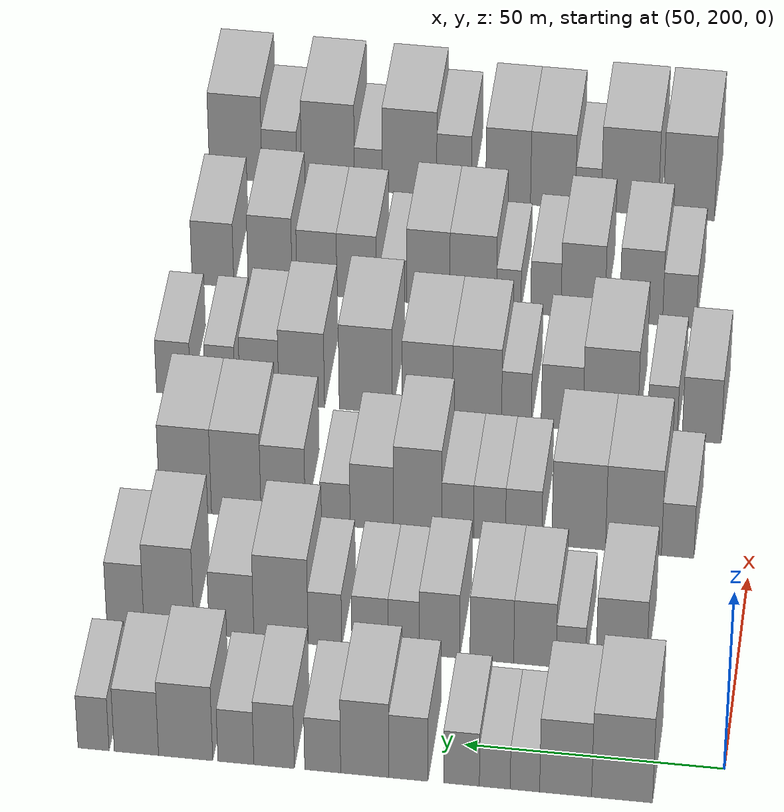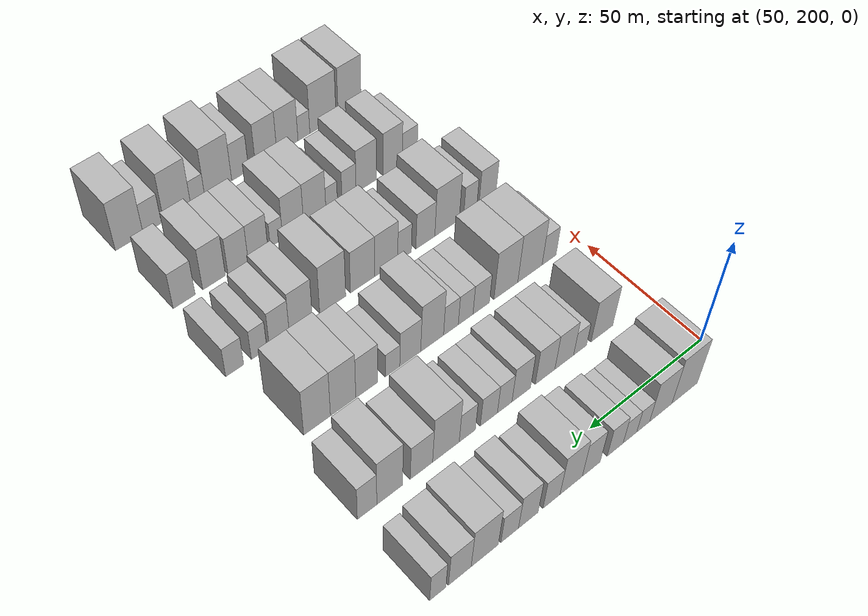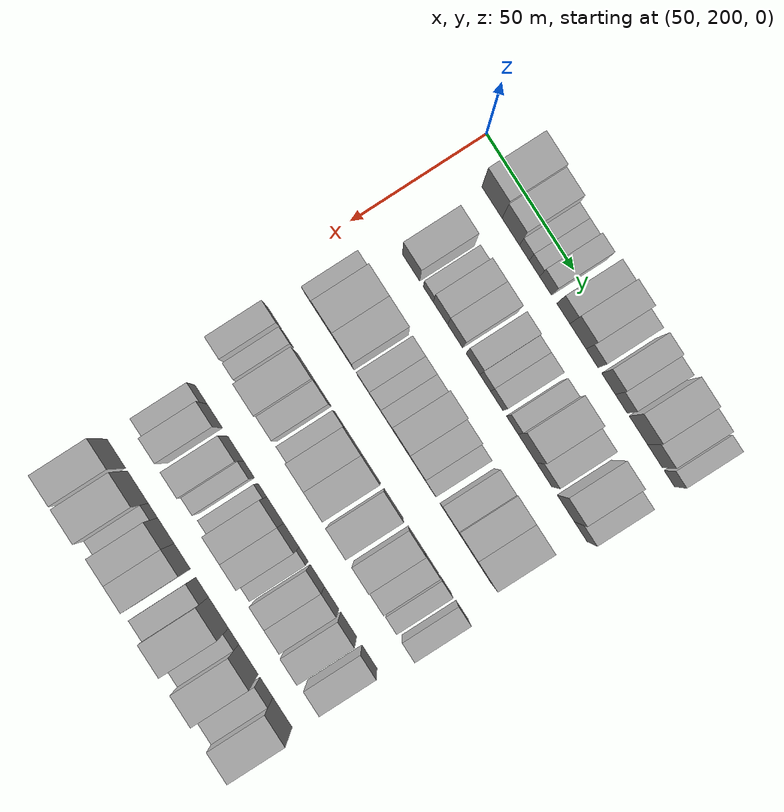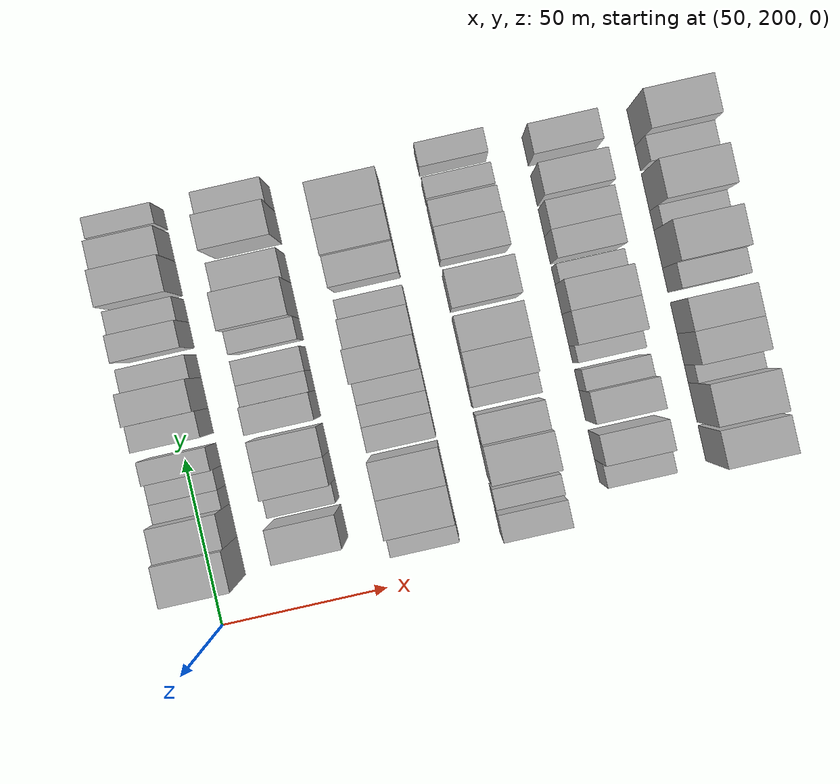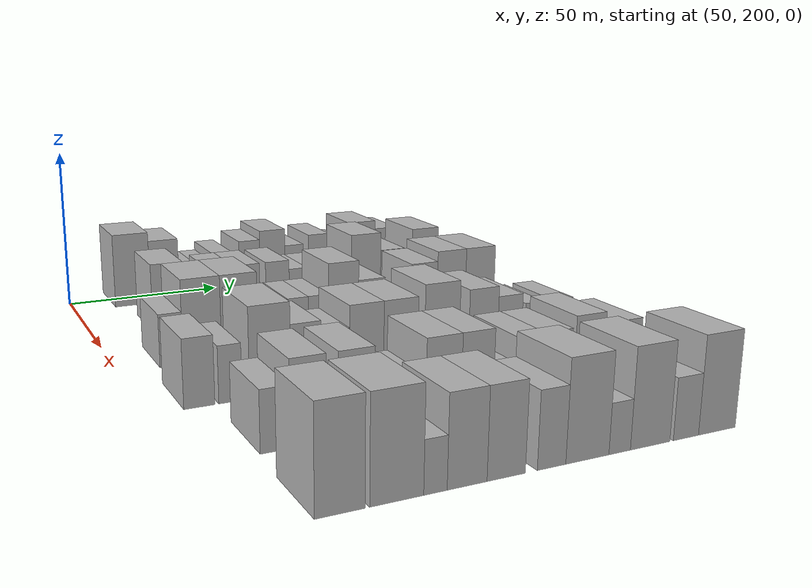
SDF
<sdf version="1.6">
 <world name="default">
  <model name="building_85">
   <static>1</static>
   <pose>50.0000 218.7581 0 0.000000 0.000000 0.000000</pose>
   <link name="link">
    <pose>0 0 12.00 0 0 0</pose>
    <collision name="collision"><geometry><box><size>20.0000 11.6404 24.0000</size></box></geometry></collision>
    <visual name="visual">
     <cast_shadows>0</cast_shadows>
     <geometry><box><size>20.0000 11.6404 24.0000</size></box></geometry>
     <material>
      <script>
       <uri>model://HANNAS_wall/materials/scripts</uri>
       <uri>model://HANNAS_wall/materials/textures</uri>
       <name>vrc/HANNAS_wall</name>
      </script>
     </material>
    </visual>
   </link>
  </model>
  <model name="building_86">
   <static>1</static>
   <pose>50.0000 229.5447 0 0.000000 0.000000 0.000000</pose>
   <link name="link">
    <pose>0 0 10.50 0 0 0</pose>
    <collision name="collision"><geometry><box><size>20.0000 9.9329 21.0000</size></box></geometry></collision>
    <visual name="visual">
     <cast_shadows>0</cast_shadows>
     <geometry><box><size>20.0000 9.9329 21.0000</size></box></geometry>
     <material>
      <script>
       <uri>model://HANNAS_wall/materials/scripts</uri>
       <uri>model://HANNAS_wall/materials/textures</uri>
       <name>vrc/HANNAS_wall</name>
      </script>
     </material>
    </visual>
   </link>
  </model>
  <model name="building_87">
   <static>1</static>
   <pose>50.0000 237.3243 0 0.000000 0.000000 0.000000</pose>
   <link name="link">
    <pose>0 0 6.00 0 0 0</pose>
    <collision name="collision"><geometry><box><size>20.0000 5.6262 12.0000</size></box></geometry></collision>
    <visual name="visual">
     <cast_shadows>0</cast_shadows>
     <geometry><box><size>20.0000 5.6262 12.0000</size></box></geometry>
     <material>
      <script>
       <uri>model://HANNAS_wall/materials/scripts</uri>
       <uri>model://HANNAS_wall/materials/textures</uri>
       <name>vrc/HANNAS_wall</name>
      </script>
     </material>
    </visual>
   </link>
  </model>
  <model name="building_88">
   <static>1</static>
   <pose>50.0000 243.0940 0 0.000000 0.000000 0.000000</pose>
   <link name="link">
    <pose>0 0 6.00 0 0 0</pose>
    <collision name="collision"><geometry><box><size>20.0000 5.9132 12.0000</size></box></geometry></collision>
    <visual name="visual">
     <cast_shadows>0</cast_shadows>
     <geometry><box><size>20.0000 5.9132 12.0000</size></box></geometry>
     <material>
      <script>
       <uri>model://HANNAS_wall/materials/scripts</uri>
       <uri>model://HANNAS_wall/materials/textures</uri>
       <name>vrc/HANNAS_wall</name>
      </script>
     </material>
    </visual>
   </link>
  </model>
  <model name="building_89">
   <static>1</static>
   <pose>50.0000 249.4748 0 0.000000 0.000000 0.000000</pose>
   <link name="link">
    <pose>0 0 7.50 0 0 0</pose>
    <collision name="collision"><geometry><box><size>20.0000 6.8486 15.0000</size></box></geometry></collision>
    <visual name="visual">
     <cast_shadows>0</cast_shadows>
     <geometry><box><size>20.0000 6.8486 15.0000</size></box></geometry>
     <material>
      <script>
       <uri>model://HANNAS_wall/materials/scripts</uri>
       <uri>model://HANNAS_wall/materials/textures</uri>
       <name>vrc/HANNAS_wall</name>
      </script>
     </material>
    </visual>
   </link>
  </model>
  <model name="building_90">
   <static>1</static>
   <pose>50.0000 259.6542 0 0.000000 0.000000 0.000000</pose>
   <link name="link">
    <pose>0 0 9.00 0 0 0</pose>
    <collision name="collision"><geometry><box><size>20.0000 7.5102 18.0000</size></box></geometry></collision>
    <visual name="visual">
     <cast_shadows>0</cast_shadows>
     <geometry><box><size>20.0000 7.5102 18.0000</size></box></geometry>
     <material>
      <script>
       <uri>model://HANNAS_wall/materials/scripts</uri>
       <uri>model://HANNAS_wall/materials/textures</uri>
       <name>vrc/HANNAS_wall</name>
      </script>
     </material>
    </visual>
   </link>
  </model>
  <model name="building_91">
   <static>1</static>
   <pose>50.0000 268.0452 0 0.000000 0.000000 0.000000</pose>
   <link name="link">
    <pose>0 0 10.50 0 0 0</pose>
    <collision name="collision"><geometry><box><size>20.0000 9.2718 21.0000</size></box></geometry></collision>
    <visual name="visual">
     <cast_shadows>0</cast_shadows>
     <geometry><box><size>20.0000 9.2718 21.0000</size></box></geometry>
     <material>
      <script>
       <uri>model://HANNAS_wall/materials/scripts</uri>
       <uri>model://HANNAS_wall/materials/textures</uri>
       <name>vrc/HANNAS_wall</name>
      </script>
     </material>
    </visual>
   </link>
  </model>
  <model name="building_92">
   <static>1</static>
   <pose>50.0000 276.1402 0 0.000000 0.000000 0.000000</pose>
   <link name="link">
    <pose>0 0 7.50 0 0 0</pose>
    <collision name="collision"><geometry><box><size>20.0000 6.9182 15.0000</size></box></geometry></collision>
    <visual name="visual">
     <cast_shadows>0</cast_shadows>
     <geometry><box><size>20.0000 6.9182 15.0000</size></box></geometry>
     <material>
      <script>
       <uri>model://HANNAS_wall/materials/scripts</uri>
       <uri>model://HANNAS_wall/materials/textures</uri>
       <name>vrc/HANNAS_wall</name>
      </script>
     </material>
    </visual>
   </link>
  </model>
  <model name="building_93">
   <static>1</static>
   <pose>50.0000 285.5070 0 0.000000 0.000000 0.000000</pose>
   <link name="link">
    <pose>0 0 9.00 0 0 0</pose>
    <collision name="collision"><geometry><box><size>20.0000 7.8154 18.0000</size></box></geometry></collision>
    <visual name="visual">
     <cast_shadows>0</cast_shadows>
     <geometry><box><size>20.0000 7.8154 18.0000</size></box></geometry>
     <material>
      <script>
       <uri>model://HANNAS_wall/materials/scripts</uri>
       <uri>model://HANNAS_wall/materials/textures</uri>
       <name>vrc/HANNAS_wall</name>
      </script>
     </material>
    </visual>
   </link>
  </model>
  <model name="building_94">
   <static>1</static>
   <pose>50.0000 292.8788 0 0.000000 0.000000 0.000000</pose>
   <link name="link">
    <pose>0 0 7.50 0 0 0</pose>
    <collision name="collision"><geometry><box><size>20.0000 6.9282 15.0000</size></box></geometry></collision>
    <visual name="visual">
     <cast_shadows>0</cast_shadows>
     <geometry><box><size>20.0000 6.9282 15.0000</size></box></geometry>
     <material>
      <script>
       <uri>model://HANNAS_wall/materials/scripts</uri>
       <uri>model://HANNAS_wall/materials/textures</uri>
       <name>vrc/HANNAS_wall</name>
      </script>
     </material>
    </visual>
   </link>
  </model>
  <model name="building_95">
   <static>1</static>
   <pose>50.0000 302.5821 0 0.000000 0.000000 0.000000</pose>
   <link name="link">
    <pose>0 0 10.50 0 0 0</pose>
    <collision name="collision"><geometry><box><size>20.0000 10.4784 21.0000</size></box></geometry></collision>
    <visual name="visual">
     <cast_shadows>0</cast_shadows>
     <geometry><box><size>20.0000 10.4784 21.0000</size></box></geometry>
     <material>
      <script>
       <uri>model://HANNAS_wall/materials/scripts</uri>
       <uri>model://HANNAS_wall/materials/textures</uri>
       <name>vrc/HANNAS_wall</name>
      </script>
     </material>
    </visual>
   </link>
  </model>
  <model name="building_96">
   <static>1</static>
   <pose>50.0000 312.1095 0 0.000000 0.000000 0.000000</pose>
   <link name="link">
    <pose>0 0 9.00 0 0 0</pose>
    <collision name="collision"><geometry><box><size>20.0000 8.5764 18.0000</size></box></geometry></collision>
    <visual name="visual">
     <cast_shadows>0</cast_shadows>
     <geometry><box><size>20.0000 8.5764 18.0000</size></box></geometry>
     <material>
      <script>
       <uri>model://HANNAS_wall/materials/scripts</uri>
       <uri>model://HANNAS_wall/materials/textures</uri>
       <name>vrc/HANNAS_wall</name>
      </script>
     </material>
    </visual>
   </link>
  </model>
  <model name="building_97">
   <static>1</static>
   <pose>50.0000 320.4080 0 0.000000 0.000000 0.000000</pose>
   <link name="link">
    <pose>0 0 7.50 0 0 0</pose>
    <collision name="collision"><geometry><box><size>20.0000 6.0207 15.0000</size></box></geometry></collision>
    <visual name="visual">
     <cast_shadows>0</cast_shadows>
     <geometry><box><size>20.0000 6.0207 15.0000</size></box></geometry>
     <material>
      <script>
       <uri>model://HANNAS_wall/materials/scripts</uri>
       <uri>model://HANNAS_wall/materials/textures</uri>
       <name>vrc/HANNAS_wall</name>
      </script>
     </material>
    </visual>
   </link>
  </model>
  <model name="building_206">
   <static>1</static>
   <pose>82.0000 222.2084 0 0.000000 0.000000 0.000000</pose>
   <link name="link">
    <pose>0 0 10.50 0 0 0</pose>
    <collision name="collision"><geometry><box><size>20.0000 9.8581 21.0000</size></box></geometry></collision>
    <visual name="visual">
     <cast_shadows>0</cast_shadows>
     <geometry><box><size>20.0000 9.8581 21.0000</size></box></geometry>
     <material>
      <script>
       <uri>model://HANNAS_wall/materials/scripts</uri>
       <uri>model://HANNAS_wall/materials/textures</uri>
       <name>vrc/HANNAS_wall</name>
      </script>
     </material>
    </visual>
   </link>
  </model>
  <model name="building_207">
   <static>1</static>
   <pose>82.0000 232.0209 0 0.000000 0.000000 0.000000</pose>
   <link name="link">
    <pose>0 0 6.00 0 0 0</pose>
    <collision name="collision"><geometry><box><size>20.0000 5.7669 12.0000</size></box></geometry></collision>
    <visual name="visual">
     <cast_shadows>0</cast_shadows>
     <geometry><box><size>20.0000 5.7669 12.0000</size></box></geometry>
     <material>
      <script>
       <uri>model://HANNAS_wall/materials/scripts</uri>
       <uri>model://HANNAS_wall/materials/textures</uri>
       <name>vrc/HANNAS_wall</name>
      </script>
     </material>
    </visual>
   </link>
  </model>
  <model name="building_208">
   <static>1</static>
   <pose>82.0000 239.0334 0 0.000000 0.000000 0.000000</pose>
   <link name="link">
    <pose>0 0 9.00 0 0 0</pose>
    <collision name="collision"><geometry><box><size>20.0000 8.2581 18.0000</size></box></geometry></collision>
    <visual name="visual">
     <cast_shadows>0</cast_shadows>
     <geometry><box><size>20.0000 8.2581 18.0000</size></box></geometry>
     <material>
      <script>
       <uri>model://HANNAS_wall/materials/scripts</uri>
       <uri>model://HANNAS_wall/materials/textures</uri>
       <name>vrc/HANNAS_wall</name>
      </script>
     </material>
    </visual>
   </link>
  </model>
  <model name="building_209">
   <static>1</static>
   <pose>82.0000 247.4325 0 0.000000 0.000000 0.000000</pose>
   <link name="link">
    <pose>0 0 9.00 0 0 0</pose>
    <collision name="collision"><geometry><box><size>20.0000 8.5400 18.0000</size></box></geometry></collision>
    <visual name="visual">
     <cast_shadows>0</cast_shadows>
     <geometry><box><size>20.0000 8.5400 18.0000</size></box></geometry>
     <material>
      <script>
       <uri>model://HANNAS_wall/materials/scripts</uri>
       <uri>model://HANNAS_wall/materials/textures</uri>
       <name>vrc/HANNAS_wall</name>
      </script>
     </material>
    </visual>
   </link>
  </model>
  <model name="building_210">
   <static>1</static>
   <pose>82.0000 257.6596 0 0.000000 0.000000 0.000000</pose>
   <link name="link">
    <pose>0 0 9.00 0 0 0</pose>
    <collision name="collision"><geometry><box><size>20.0000 7.9143 18.0000</size></box></geometry></collision>
    <visual name="visual">
     <cast_shadows>0</cast_shadows>
     <geometry><box><size>20.0000 7.9143 18.0000</size></box></geometry>
     <material>
      <script>
       <uri>model://HANNAS_wall/materials/scripts</uri>
       <uri>model://HANNAS_wall/materials/textures</uri>
       <name>vrc/HANNAS_wall</name>
      </script>
     </material>
    </visual>
   </link>
  </model>
  <model name="building_211">
   <static>1</static>
   <pose>82.0000 264.6657 0 0.000000 0.000000 0.000000</pose>
   <link name="link">
    <pose>0 0 7.50 0 0 0</pose>
    <collision name="collision"><geometry><box><size>20.0000 6.0979 15.0000</size></box></geometry></collision>
    <visual name="visual">
     <cast_shadows>0</cast_shadows>
     <geometry><box><size>20.0000 6.0979 15.0000</size></box></geometry>
     <material>
      <script>
       <uri>model://HANNAS_wall/materials/scripts</uri>
       <uri>model://HANNAS_wall/materials/textures</uri>
       <name>vrc/HANNAS_wall</name>
      </script>
     </material>
    </visual>
   </link>
  </model>
  <model name="building_212">
   <static>1</static>
   <pose>82.0000 271.2626 0 0.000000 0.000000 0.000000</pose>
   <link name="link">
    <pose>0 0 7.50 0 0 0</pose>
    <collision name="collision"><geometry><box><size>20.0000 7.0958 15.0000</size></box></geometry></collision>
    <visual name="visual">
     <cast_shadows>0</cast_shadows>
     <geometry><box><size>20.0000 7.0958 15.0000</size></box></geometry>
     <material>
      <script>
       <uri>model://HANNAS_wall/materials/scripts</uri>
       <uri>model://HANNAS_wall/materials/textures</uri>
       <name>vrc/HANNAS_wall</name>
      </script>
     </material>
    </visual>
   </link>
  </model>
  <model name="building_213">
   <static>1</static>
   <pose>82.0000 280.1035 0 0.000000 0.000000 0.000000</pose>
   <link name="link">
    <pose>0 0 7.50 0 0 0</pose>
    <collision name="collision"><geometry><box><size>20.0000 6.5861 15.0000</size></box></geometry></collision>
    <visual name="visual">
     <cast_shadows>0</cast_shadows>
     <geometry><box><size>20.0000 6.5861 15.0000</size></box></geometry>
     <material>
      <script>
       <uri>model://HANNAS_wall/materials/scripts</uri>
       <uri>model://HANNAS_wall/materials/textures</uri>
       <name>vrc/HANNAS_wall</name>
      </script>
     </material>
    </visual>
   </link>
  </model>
  <model name="building_214">
   <static>1</static>
   <pose>82.0000 288.7318 0 0.000000 0.000000 0.000000</pose>
   <link name="link">
    <pose>0 0 12.00 0 0 0</pose>
    <collision name="collision"><geometry><box><size>20.0000 10.6703 24.0000</size></box></geometry></collision>
    <visual name="visual">
     <cast_shadows>0</cast_shadows>
     <geometry><box><size>20.0000 10.6703 24.0000</size></box></geometry>
     <material>
      <script>
       <uri>model://HANNAS_wall/materials/scripts</uri>
       <uri>model://HANNAS_wall/materials/textures</uri>
       <name>vrc/HANNAS_wall</name>
      </script>
     </material>
    </visual>
   </link>
  </model>
  <model name="building_215">
   <static>1</static>
   <pose>82.0000 298.4669 0 0.000000 0.000000 0.000000</pose>
   <link name="link">
    <pose>0 0 9.00 0 0 0</pose>
    <collision name="collision"><geometry><box><size>20.0000 8.7999 18.0000</size></box></geometry></collision>
    <visual name="visual">
     <cast_shadows>0</cast_shadows>
     <geometry><box><size>20.0000 8.7999 18.0000</size></box></geometry>
     <material>
      <script>
       <uri>model://HANNAS_wall/materials/scripts</uri>
       <uri>model://HANNAS_wall/materials/textures</uri>
       <name>vrc/HANNAS_wall</name>
      </script>
     </material>
    </visual>
   </link>
  </model>
  <model name="building_216">
   <static>1</static>
   <pose>82.0000 310.7904 0 0.000000 0.000000 0.000000</pose>
   <link name="link">
    <pose>0 0 12.00 0 0 0</pose>
    <collision name="collision"><geometry><box><size>20.0000 9.8472 24.0000</size></box></geometry></collision>
    <visual name="visual">
     <cast_shadows>0</cast_shadows>
     <geometry><box><size>20.0000 9.8472 24.0000</size></box></geometry>
     <material>
      <script>
       <uri>model://HANNAS_wall/materials/scripts</uri>
       <uri>model://HANNAS_wall/materials/textures</uri>
       <name>vrc/HANNAS_wall</name>
      </script>
     </material>
    </visual>
   </link>
  </model>
  <model name="building_217">
   <static>1</static>
   <pose>82.0000 319.3807 0 0.000000 0.000000 0.000000</pose>
   <link name="link">
    <pose>0 0 9.00 0 0 0</pose>
    <collision name="collision"><geometry><box><size>20.0000 7.3335 18.0000</size></box></geometry></collision>
    <visual name="visual">
     <cast_shadows>0</cast_shadows>
     <geometry><box><size>20.0000 7.3335 18.0000</size></box></geometry>
     <material>
      <script>
       <uri>model://HANNAS_wall/materials/scripts</uri>
       <uri>model://HANNAS_wall/materials/textures</uri>
       <name>vrc/HANNAS_wall</name>
      </script>
     </material>
    </visual>
   </link>
  </model>
  <model name="building_325">
   <static>1</static>
   <pose>114.0000 214.2862 0 0.000000 0.000000 0.000000</pose>
   <link name="link">
    <pose>0 0 7.50 0 0 0</pose>
    <collision name="collision"><geometry><box><size>20.0000 6.4348 15.0000</size></box></geometry></collision>
    <visual name="visual">
     <cast_shadows>0</cast_shadows>
     <geometry><box><size>20.0000 6.4348 15.0000</size></box></geometry>
     <material>
      <script>
       <uri>model://HANNAS_wall/materials/scripts</uri>
       <uri>model://HANNAS_wall/materials/textures</uri>
       <name>vrc/HANNAS_wall</name>
      </script>
     </material>
    </visual>
   </link>
  </model>
  <model name="building_326">
   <static>1</static>
   <pose>114.0000 223.0516 0 0.000000 0.000000 0.000000</pose>
   <link name="link">
    <pose>0 0 12.00 0 0 0</pose>
    <collision name="collision"><geometry><box><size>20.0000 11.0961 24.0000</size></box></geometry></collision>
    <visual name="visual">
     <cast_shadows>0</cast_shadows>
     <geometry><box><size>20.0000 11.0961 24.0000</size></box></geometry>
     <material>
      <script>
       <uri>model://HANNAS_wall/materials/scripts</uri>
       <uri>model://HANNAS_wall/materials/textures</uri>
       <name>vrc/HANNAS_wall</name>
      </script>
     </material>
    </visual>
   </link>
  </model>
  <model name="building_327">
   <static>1</static>
   <pose>114.0000 233.9437 0 0.000000 0.000000 0.000000</pose>
   <link name="link">
    <pose>0 0 12.00 0 0 0</pose>
    <collision name="collision"><geometry><box><size>20.0000 10.6882 24.0000</size></box></geometry></collision>
    <visual name="visual">
     <cast_shadows>0</cast_shadows>
     <geometry><box><size>20.0000 10.6882 24.0000</size></box></geometry>
     <material>
      <script>
       <uri>model://HANNAS_wall/materials/scripts</uri>
       <uri>model://HANNAS_wall/materials/textures</uri>
       <name>vrc/HANNAS_wall</name>
      </script>
     </material>
    </visual>
   </link>
  </model>
  <model name="building_328">
   <static>1</static>
   <pose>114.0000 244.8838 0 0.000000 0.000000 0.000000</pose>
   <link name="link">
    <pose>0 0 7.50 0 0 0</pose>
    <collision name="collision"><geometry><box><size>20.0000 7.1919 15.0000</size></box></geometry></collision>
    <visual name="visual">
     <cast_shadows>0</cast_shadows>
     <geometry><box><size>20.0000 7.1919 15.0000</size></box></geometry>
     <material>
      <script>
       <uri>model://HANNAS_wall/materials/scripts</uri>
       <uri>model://HANNAS_wall/materials/textures</uri>
       <name>vrc/HANNAS_wall</name>
      </script>
     </material>
    </visual>
   </link>
  </model>
  <model name="building_329">
   <static>1</static>
   <pose>114.0000 251.6584 0 0.000000 0.000000 0.000000</pose>
   <link name="link">
    <pose>0 0 7.50 0 0 0</pose>
    <collision name="collision"><geometry><box><size>20.0000 6.3574 15.0000</size></box></geometry></collision>
    <visual name="visual">
     <cast_shadows>0</cast_shadows>
     <geometry><box><size>20.0000 6.3574 15.0000</size></box></geometry>
     <material>
      <script>
       <uri>model://HANNAS_wall/materials/scripts</uri>
       <uri>model://HANNAS_wall/materials/textures</uri>
       <name>vrc/HANNAS_wall</name>
      </script>
     </material>
    </visual>
   </link>
  </model>
  <model name="building_330">
   <static>1</static>
   <pose>114.0000 257.9962 0 0.000000 0.000000 0.000000</pose>
   <link name="link">
    <pose>0 0 7.50 0 0 0</pose>
    <collision name="collision"><geometry><box><size>20.0000 6.3181 15.0000</size></box></geometry></collision>
    <visual name="visual">
     <cast_shadows>0</cast_shadows>
     <geometry><box><size>20.0000 6.3181 15.0000</size></box></geometry>
     <material>
      <script>
       <uri>model://HANNAS_wall/materials/scripts</uri>
       <uri>model://HANNAS_wall/materials/textures</uri>
       <name>vrc/HANNAS_wall</name>
      </script>
     </material>
    </visual>
   </link>
  </model>
  <model name="building_331">
   <static>1</static>
   <pose>114.0000 265.9813 0 0.000000 0.000000 0.000000</pose>
   <link name="link">
    <pose>0 0 12.00 0 0 0</pose>
    <collision name="collision"><geometry><box><size>20.0000 9.6522 24.0000</size></box></geometry></collision>
    <visual name="visual">
     <cast_shadows>0</cast_shadows>
     <geometry><box><size>20.0000 9.6522 24.0000</size></box></geometry>
     <material>
      <script>
       <uri>model://HANNAS_wall/materials/scripts</uri>
       <uri>model://HANNAS_wall/materials/textures</uri>
       <name>vrc/HANNAS_wall</name>
      </script>
     </material>
    </visual>
   </link>
  </model>
  <model name="building_332">
   <static>1</static>
   <pose>114.0000 275.1379 0 0.000000 0.000000 0.000000</pose>
   <link name="link">
    <pose>0 0 9.00 0 0 0</pose>
    <collision name="collision"><geometry><box><size>20.0000 8.6609 18.0000</size></box></geometry></collision>
    <visual name="visual">
     <cast_shadows>0</cast_shadows>
     <geometry><box><size>20.0000 8.6609 18.0000</size></box></geometry>
     <material>
      <script>
       <uri>model://HANNAS_wall/materials/scripts</uri>
       <uri>model://HANNAS_wall/materials/textures</uri>
       <name>vrc/HANNAS_wall</name>
      </script>
     </material>
    </visual>
   </link>
  </model>
  <model name="building_333">
   <static>1</static>
   <pose>114.0000 282.4477 0 0.000000 0.000000 0.000000</pose>
   <link name="link">
    <pose>0 0 6.00 0 0 0</pose>
    <collision name="collision"><geometry><box><size>20.0000 5.9588 12.0000</size></box></geometry></collision>
    <visual name="visual">
     <cast_shadows>0</cast_shadows>
     <geometry><box><size>20.0000 5.9588 12.0000</size></box></geometry>
     <material>
      <script>
       <uri>model://HANNAS_wall/materials/scripts</uri>
       <uri>model://HANNAS_wall/materials/textures</uri>
       <name>vrc/HANNAS_wall</name>
      </script>
     </material>
    </visual>
   </link>
  </model>
  <model name="building_334">
   <static>1</static>
   <pose>114.0000 292.8558 0 0.000000 0.000000 0.000000</pose>
   <link name="link">
    <pose>0 0 10.50 0 0 0</pose>
    <collision name="collision"><geometry><box><size>20.0000 8.8573 21.0000</size></box></geometry></collision>
    <visual name="visual">
     <cast_shadows>0</cast_shadows>
     <geometry><box><size>20.0000 8.8573 21.0000</size></box></geometry>
     <material>
      <script>
       <uri>model://HANNAS_wall/materials/scripts</uri>
       <uri>model://HANNAS_wall/materials/textures</uri>
       <name>vrc/HANNAS_wall</name>
      </script>
     </material>
    </visual>
   </link>
  </model>
  <model name="building_335">
   <static>1</static>
   <pose>114.0000 302.2634 0 0.000000 0.000000 0.000000</pose>
   <link name="link">
    <pose>0 0 12.00 0 0 0</pose>
    <collision name="collision"><geometry><box><size>20.0000 9.9579 24.0000</size></box></geometry></collision>
    <visual name="visual">
     <cast_shadows>0</cast_shadows>
     <geometry><box><size>20.0000 9.9579 24.0000</size></box></geometry>
     <material>
      <script>
       <uri>model://HANNAS_wall/materials/scripts</uri>
       <uri>model://HANNAS_wall/materials/textures</uri>
       <name>vrc/HANNAS_wall</name>
      </script>
     </material>
    </visual>
   </link>
  </model>
  <model name="building_336">
   <static>1</static>
   <pose>114.0000 312.4373 0 0.000000 0.000000 0.000000</pose>
   <link name="link">
    <pose>0 0 12.00 0 0 0</pose>
    <collision name="collision"><geometry><box><size>20.0000 10.3899 24.0000</size></box></geometry></collision>
    <visual name="visual">
     <cast_shadows>0</cast_shadows>
     <geometry><box><size>20.0000 10.3899 24.0000</size></box></geometry>
     <material>
      <script>
       <uri>model://HANNAS_wall/materials/scripts</uri>
       <uri>model://HANNAS_wall/materials/textures</uri>
       <name>vrc/HANNAS_wall</name>
      </script>
     </material>
    </visual>
   </link>
  </model>
  <model name="building_447">
   <static>1</static>
   <pose>146.0000 212.5129 0 0.000000 0.000000 0.000000</pose>
   <link name="link">
    <pose>0 0 9.00 0 0 0</pose>
    <collision name="collision"><geometry><box><size>20.0000 7.8923 18.0000</size></box></geometry></collision>
    <visual name="visual">
     <cast_shadows>0</cast_shadows>
     <geometry><box><size>20.0000 7.8923 18.0000</size></box></geometry>
     <material>
      <script>
       <uri>model://HANNAS_wall/materials/scripts</uri>
       <uri>model://HANNAS_wall/materials/textures</uri>
       <name>vrc/HANNAS_wall</name>
      </script>
     </material>
    </visual>
   </link>
  </model>
  <model name="building_448">
   <static>1</static>
   <pose>146.0000 220.4703 0 0.000000 0.000000 0.000000</pose>
   <link name="link">
    <pose>0 0 7.50 0 0 0</pose>
    <collision name="collision"><geometry><box><size>20.0000 6.0225 15.0000</size></box></geometry></collision>
    <visual name="visual">
     <cast_shadows>0</cast_shadows>
     <geometry><box><size>20.0000 6.0225 15.0000</size></box></geometry>
     <material>
      <script>
       <uri>model://HANNAS_wall/materials/scripts</uri>
       <uri>model://HANNAS_wall/materials/textures</uri>
       <name>vrc/HANNAS_wall</name>
      </script>
     </material>
    </visual>
   </link>
  </model>
  <model name="building_449">
   <static>1</static>
   <pose>146.0000 231.0067 0 0.000000 0.000000 0.000000</pose>
   <link name="link">
    <pose>0 0 12.00 0 0 0</pose>
    <collision name="collision"><geometry><box><size>20.0000 11.0505 24.0000</size></box></geometry></collision>
    <visual name="visual">
     <cast_shadows>0</cast_shadows>
     <geometry><box><size>20.0000 11.0505 24.0000</size></box></geometry>
     <material>
      <script>
       <uri>model://HANNAS_wall/materials/scripts</uri>
       <uri>model://HANNAS_wall/materials/textures</uri>
       <name>vrc/HANNAS_wall</name>
      </script>
     </material>
    </visual>
   </link>
  </model>
  <model name="building_450">
   <static>1</static>
   <pose>146.0000 240.7577 0 0.000000 0.000000 0.000000</pose>
   <link name="link">
    <pose>0 0 9.00 0 0 0</pose>
    <collision name="collision"><geometry><box><size>20.0000 8.4515 18.0000</size></box></geometry></collision>
    <visual name="visual">
     <cast_shadows>0</cast_shadows>
     <geometry><box><size>20.0000 8.4515 18.0000</size></box></geometry>
     <material>
      <script>
       <uri>model://HANNAS_wall/materials/scripts</uri>
       <uri>model://HANNAS_wall/materials/textures</uri>
       <name>vrc/HANNAS_wall</name>
      </script>
     </material>
    </visual>
   </link>
  </model>
  <model name="building_451">
   <static>1</static>
   <pose>146.0000 249.9892 0 0.000000 0.000000 0.000000</pose>
   <link name="link">
    <pose>0 0 7.50 0 0 0</pose>
    <collision name="collision"><geometry><box><size>20.0000 6.0115 15.0000</size></box></geometry></collision>
    <visual name="visual">
     <cast_shadows>0</cast_shadows>
     <geometry><box><size>20.0000 6.0115 15.0000</size></box></geometry>
     <material>
      <script>
       <uri>model://HANNAS_wall/materials/scripts</uri>
       <uri>model://HANNAS_wall/materials/textures</uri>
       <name>vrc/HANNAS_wall</name>
      </script>
     </material>
    </visual>
   </link>
  </model>
  <model name="building_452">
   <static>1</static>
   <pose>146.0000 257.9615 0 0.000000 0.000000 0.000000</pose>
   <link name="link">
    <pose>0 0 10.50 0 0 0</pose>
    <collision name="collision"><geometry><box><size>20.0000 9.9332 21.0000</size></box></geometry></collision>
    <visual name="visual">
     <cast_shadows>0</cast_shadows>
     <geometry><box><size>20.0000 9.9332 21.0000</size></box></geometry>
     <material>
      <script>
       <uri>model://HANNAS_wall/materials/scripts</uri>
       <uri>model://HANNAS_wall/materials/textures</uri>
       <name>vrc/HANNAS_wall</name>
      </script>
     </material>
    </visual>
   </link>
  </model>
  <model name="building_453">
   <static>1</static>
   <pose>146.0000 268.0631 0 0.000000 0.000000 0.000000</pose>
   <link name="link">
    <pose>0 0 10.50 0 0 0</pose>
    <collision name="collision"><geometry><box><size>20.0000 10.2701 21.0000</size></box></geometry></collision>
    <visual name="visual">
     <cast_shadows>0</cast_shadows>
     <geometry><box><size>20.0000 10.2701 21.0000</size></box></geometry>
     <material>
      <script>
       <uri>model://HANNAS_wall/materials/scripts</uri>
       <uri>model://HANNAS_wall/materials/textures</uri>
       <name>vrc/HANNAS_wall</name>
      </script>
     </material>
    </visual>
   </link>
  </model>
  <model name="building_454">
   <static>1</static>
   <pose>146.0000 280.5917 0 0.000000 0.000000 0.000000</pose>
   <link name="link">
    <pose>0 0 12.00 0 0 0</pose>
    <collision name="collision"><geometry><box><size>20.0000 10.7870 24.0000</size></box></geometry></collision>
    <visual name="visual">
     <cast_shadows>0</cast_shadows>
     <geometry><box><size>20.0000 10.7870 24.0000</size></box></geometry>
     <material>
      <script>
       <uri>model://HANNAS_wall/materials/scripts</uri>
       <uri>model://HANNAS_wall/materials/textures</uri>
       <name>vrc/HANNAS_wall</name>
      </script>
     </material>
    </visual>
   </link>
  </model>
  <model name="building_455">
   <static>1</static>
   <pose>146.0000 293.6451 0 0.000000 0.000000 0.000000</pose>
   <link name="link">
    <pose>0 0 10.50 0 0 0</pose>
    <collision name="collision"><geometry><box><size>20.0000 9.3199 21.0000</size></box></geometry></collision>
    <visual name="visual">
     <cast_shadows>0</cast_shadows>
     <geometry><box><size>20.0000 9.3199 21.0000</size></box></geometry>
     <material>
      <script>
       <uri>model://HANNAS_wall/materials/scripts</uri>
       <uri>model://HANNAS_wall/materials/textures</uri>
       <name>vrc/HANNAS_wall</name>
      </script>
     </material>
    </visual>
   </link>
  </model>
  <model name="building_456">
   <static>1</static>
   <pose>146.0000 302.2775 0 0.000000 0.000000 0.000000</pose>
   <link name="link">
    <pose>0 0 9.00 0 0 0</pose>
    <collision name="collision"><geometry><box><size>20.0000 7.9449 18.0000</size></box></geometry></collision>
    <visual name="visual">
     <cast_shadows>0</cast_shadows>
     <geometry><box><size>20.0000 7.9449 18.0000</size></box></geometry>
     <material>
      <script>
       <uri>model://HANNAS_wall/materials/scripts</uri>
       <uri>model://HANNAS_wall/materials/textures</uri>
       <name>vrc/HANNAS_wall</name>
      </script>
     </material>
    </visual>
   </link>
  </model>
  <model name="building_457">
   <static>1</static>
   <pose>146.0000 310.3003 0 0.000000 0.000000 0.000000</pose>
   <link name="link">
    <pose>0 0 7.50 0 0 0</pose>
    <collision name="collision"><geometry><box><size>20.0000 6.1008 15.0000</size></box></geometry></collision>
    <visual name="visual">
     <cast_shadows>0</cast_shadows>
     <geometry><box><size>20.0000 6.1008 15.0000</size></box></geometry>
     <material>
      <script>
       <uri>model://HANNAS_wall/materials/scripts</uri>
       <uri>model://HANNAS_wall/materials/textures</uri>
       <name>vrc/HANNAS_wall</name>
      </script>
     </material>
    </visual>
   </link>
  </model>
  <model name="building_458">
   <static>1</static>
   <pose>146.0000 319.8412 0 0.000000 0.000000 0.000000</pose>
   <link name="link">
    <pose>0 0 7.50 0 0 0</pose>
    <collision name="collision"><geometry><box><size>20.0000 6.9810 15.0000</size></box></geometry></collision>
    <visual name="visual">
     <cast_shadows>0</cast_shadows>
     <geometry><box><size>20.0000 6.9810 15.0000</size></box></geometry>
     <material>
      <script>
       <uri>model://HANNAS_wall/materials/scripts</uri>
       <uri>model://HANNAS_wall/materials/textures</uri>
       <name>vrc/HANNAS_wall</name>
      </script>
     </material>
    </visual>
   </link>
  </model>
  <model name="building_565">
   <static>1</static>
   <pose>178.0000 220.0641 0 0.000000 0.000000 0.000000</pose>
   <link name="link">
    <pose>0 0 7.50 0 0 0</pose>
    <collision name="collision"><geometry><box><size>20.0000 6.9456 15.0000</size></box></geometry></collision>
    <visual name="visual">
     <cast_shadows>0</cast_shadows>
     <geometry><box><size>20.0000 6.9456 15.0000</size></box></geometry>
     <material>
      <script>
       <uri>model://HANNAS_wall/materials/scripts</uri>
       <uri>model://HANNAS_wall/materials/textures</uri>
       <name>vrc/HANNAS_wall</name>
      </script>
     </material>
    </visual>
   </link>
  </model>
  <model name="building_566">
   <static>1</static>
   <pose>178.0000 227.9621 0 0.000000 0.000000 0.000000</pose>
   <link name="link">
    <pose>0 0 10.50 0 0 0</pose>
    <collision name="collision"><geometry><box><size>20.0000 8.8502 21.0000</size></box></geometry></collision>
    <visual name="visual">
     <cast_shadows>0</cast_shadows>
     <geometry><box><size>20.0000 8.8502 21.0000</size></box></geometry>
     <material>
      <script>
       <uri>model://HANNAS_wall/materials/scripts</uri>
       <uri>model://HANNAS_wall/materials/textures</uri>
       <name>vrc/HANNAS_wall</name>
      </script>
     </material>
    </visual>
   </link>
  </model>
  <model name="building_567">
   <static>1</static>
   <pose>178.0000 239.9370 0 0.000000 0.000000 0.000000</pose>
   <link name="link">
    <pose>0 0 10.50 0 0 0</pose>
    <collision name="collision"><geometry><box><size>20.0000 9.0996 21.0000</size></box></geometry></collision>
    <visual name="visual">
     <cast_shadows>0</cast_shadows>
     <geometry><box><size>20.0000 9.0996 21.0000</size></box></geometry>
     <material>
      <script>
       <uri>model://HANNAS_wall/materials/scripts</uri>
       <uri>model://HANNAS_wall/materials/textures</uri>
       <name>vrc/HANNAS_wall</name>
      </script>
     </material>
    </visual>
   </link>
  </model>
  <model name="building_568">
   <static>1</static>
   <pose>178.0000 247.6126 0 0.000000 0.000000 0.000000</pose>
   <link name="link">
    <pose>0 0 7.50 0 0 0</pose>
    <collision name="collision"><geometry><box><size>20.0000 6.2516 15.0000</size></box></geometry></collision>
    <visual name="visual">
     <cast_shadows>0</cast_shadows>
     <geometry><box><size>20.0000 6.2516 15.0000</size></box></geometry>
     <material>
      <script>
       <uri>model://HANNAS_wall/materials/scripts</uri>
       <uri>model://HANNAS_wall/materials/textures</uri>
       <name>vrc/HANNAS_wall</name>
      </script>
     </material>
    </visual>
   </link>
  </model>
  <model name="building_569">
   <static>1</static>
   <pose>178.0000 255.2660 0 0.000000 0.000000 0.000000</pose>
   <link name="link">
    <pose>0 0 6.00 0 0 0</pose>
    <collision name="collision"><geometry><box><size>20.0000 5.0553 12.0000</size></box></geometry></collision>
    <visual name="visual">
     <cast_shadows>0</cast_shadows>
     <geometry><box><size>20.0000 5.0553 12.0000</size></box></geometry>
     <material>
      <script>
       <uri>model://HANNAS_wall/materials/scripts</uri>
       <uri>model://HANNAS_wall/materials/textures</uri>
       <name>vrc/HANNAS_wall</name>
      </script>
     </material>
    </visual>
   </link>
  </model>
  <model name="building_570">
   <static>1</static>
   <pose>178.0000 262.6031 0 0.000000 0.000000 0.000000</pose>
   <link name="link">
    <pose>0 0 10.50 0 0 0</pose>
    <collision name="collision"><geometry><box><size>20.0000 9.6189 21.0000</size></box></geometry></collision>
    <visual name="visual">
     <cast_shadows>0</cast_shadows>
     <geometry><box><size>20.0000 9.6189 21.0000</size></box></geometry>
     <material>
      <script>
       <uri>model://HANNAS_wall/materials/scripts</uri>
       <uri>model://HANNAS_wall/materials/textures</uri>
       <name>vrc/HANNAS_wall</name>
      </script>
     </material>
    </visual>
   </link>
  </model>
  <model name="building_571">
   <static>1</static>
   <pose>178.0000 271.8911 0 0.000000 0.000000 0.000000</pose>
   <link name="link">
    <pose>0 0 10.50 0 0 0</pose>
    <collision name="collision"><geometry><box><size>20.0000 8.9571 21.0000</size></box></geometry></collision>
    <visual name="visual">
     <cast_shadows>0</cast_shadows>
     <geometry><box><size>20.0000 8.9571 21.0000</size></box></geometry>
     <material>
      <script>
       <uri>model://HANNAS_wall/materials/scripts</uri>
       <uri>model://HANNAS_wall/materials/textures</uri>
       <name>vrc/HANNAS_wall</name>
      </script>
     </material>
    </visual>
   </link>
  </model>
  <model name="building_572">
   <static>1</static>
   <pose>178.0000 278.9874 0 0.000000 0.000000 0.000000</pose>
   <link name="link">
    <pose>0 0 6.00 0 0 0</pose>
    <collision name="collision"><geometry><box><size>20.0000 5.2356 12.0000</size></box></geometry></collision>
    <visual name="visual">
     <cast_shadows>0</cast_shadows>
     <geometry><box><size>20.0000 5.2356 12.0000</size></box></geometry>
     <material>
      <script>
       <uri>model://HANNAS_wall/materials/scripts</uri>
       <uri>model://HANNAS_wall/materials/textures</uri>
       <name>vrc/HANNAS_wall</name>
      </script>
     </material>
    </visual>
   </link>
  </model>
  <model name="building_573">
   <static>1</static>
   <pose>178.0000 286.7054 0 0.000000 0.000000 0.000000</pose>
   <link name="link">
    <pose>0 0 9.00 0 0 0</pose>
    <collision name="collision"><geometry><box><size>20.0000 8.2005 18.0000</size></box></geometry></collision>
    <visual name="visual">
     <cast_shadows>0</cast_shadows>
     <geometry><box><size>20.0000 8.2005 18.0000</size></box></geometry>
     <material>
      <script>
       <uri>model://HANNAS_wall/materials/scripts</uri>
       <uri>model://HANNAS_wall/materials/textures</uri>
       <name>vrc/HANNAS_wall</name>
      </script>
     </material>
    </visual>
   </link>
  </model>
  <model name="building_574">
   <static>1</static>
   <pose>178.0000 294.9532 0 0.000000 0.000000 0.000000</pose>
   <link name="link">
    <pose>0 0 9.00 0 0 0</pose>
    <collision name="collision"><geometry><box><size>20.0000 8.2950 18.0000</size></box></geometry></collision>
    <visual name="visual">
     <cast_shadows>0</cast_shadows>
     <geometry><box><size>20.0000 8.2950 18.0000</size></box></geometry>
     <material>
      <script>
       <uri>model://HANNAS_wall/materials/scripts</uri>
       <uri>model://HANNAS_wall/materials/textures</uri>
       <name>vrc/HANNAS_wall</name>
      </script>
     </material>
    </visual>
   </link>
  </model>
  <model name="building_575">
   <static>1</static>
   <pose>178.0000 304.6743 0 0.000000 0.000000 0.000000</pose>
   <link name="link">
    <pose>0 0 10.50 0 0 0</pose>
    <collision name="collision"><geometry><box><size>20.0000 9.1473 21.0000</size></box></geometry></collision>
    <visual name="visual">
     <cast_shadows>0</cast_shadows>
     <geometry><box><size>20.0000 9.1473 21.0000</size></box></geometry>
     <material>
      <script>
       <uri>model://HANNAS_wall/materials/scripts</uri>
       <uri>model://HANNAS_wall/materials/textures</uri>
       <name>vrc/HANNAS_wall</name>
      </script>
     </material>
    </visual>
   </link>
  </model>
  <model name="building_576">
   <static>1</static>
   <pose>178.0000 316.5896 0 0.000000 0.000000 0.000000</pose>
   <link name="link">
    <pose>0 0 9.00 0 0 0</pose>
    <collision name="collision"><geometry><box><size>20.0000 8.6834 18.0000</size></box></geometry></collision>
    <visual name="visual">
     <cast_shadows>0</cast_shadows>
     <geometry><box><size>20.0000 8.6834 18.0000</size></box></geometry>
     <material>
      <script>
       <uri>model://HANNAS_wall/materials/scripts</uri>
       <uri>model://HANNAS_wall/materials/textures</uri>
       <name>vrc/HANNAS_wall</name>
      </script>
     </material>
    </visual>
   </link>
  </model>
  <model name="building_685">
   <static>1</static>
   <pose>210.0000 221.1845 0 0.000000 0.000000 0.000000</pose>
   <link name="link">
    <pose>0 0 12.00 0 0 0</pose>
    <collision name="collision"><geometry><box><size>20.0000 10.7318 24.0000</size></box></geometry></collision>
    <visual name="visual">
     <cast_shadows>0</cast_shadows>
     <geometry><box><size>20.0000 10.7318 24.0000</size></box></geometry>
     <material>
      <script>
       <uri>model://HANNAS_wall/materials/scripts</uri>
       <uri>model://HANNAS_wall/materials/textures</uri>
       <name>vrc/HANNAS_wall</name>
      </script>
     </material>
    </visual>
   </link>
  </model>
  <model name="building_686">
   <static>1</static>
   <pose>210.0000 233.5440 0 0.000000 0.000000 0.000000</pose>
   <link name="link">
    <pose>0 0 12.00 0 0 0</pose>
    <collision name="collision"><geometry><box><size>20.0000 11.9873 24.0000</size></box></geometry></collision>
    <visual name="visual">
     <cast_shadows>0</cast_shadows>
     <geometry><box><size>20.0000 11.9873 24.0000</size></box></geometry>
     <material>
      <script>
       <uri>model://HANNAS_wall/materials/scripts</uri>
       <uri>model://HANNAS_wall/materials/textures</uri>
       <name>vrc/HANNAS_wall</name>
      </script>
     </material>
    </visual>
   </link>
  </model>
  <model name="building_687">
   <static>1</static>
   <pose>210.0000 242.2339 0 0.000000 0.000000 0.000000</pose>
   <link name="link">
    <pose>0 0 6.00 0 0 0</pose>
    <collision name="collision"><geometry><box><size>20.0000 5.3925 12.0000</size></box></geometry></collision>
    <visual name="visual">
     <cast_shadows>0</cast_shadows>
     <geometry><box><size>20.0000 5.3925 12.0000</size></box></geometry>
     <material>
      <script>
       <uri>model://HANNAS_wall/materials/scripts</uri>
       <uri>model://HANNAS_wall/materials/textures</uri>
       <name>vrc/HANNAS_wall</name>
      </script>
     </material>
    </visual>
   </link>
  </model>
  <model name="building_688">
   <static>1</static>
   <pose>210.0000 249.6484 0 0.000000 0.000000 0.000000</pose>
   <link name="link">
    <pose>0 0 10.50 0 0 0</pose>
    <collision name="collision"><geometry><box><size>20.0000 9.4365 21.0000</size></box></geometry></collision>
    <visual name="visual">
     <cast_shadows>0</cast_shadows>
     <geometry><box><size>20.0000 9.4365 21.0000</size></box></geometry>
     <material>
      <script>
       <uri>model://HANNAS_wall/materials/scripts</uri>
       <uri>model://HANNAS_wall/materials/textures</uri>
       <name>vrc/HANNAS_wall</name>
      </script>
     </material>
    </visual>
   </link>
  </model>
  <model name="building_689">
   <static>1</static>
   <pose>210.0000 259.0776 0 0.000000 0.000000 0.000000</pose>
   <link name="link">
    <pose>0 0 10.50 0 0 0</pose>
    <collision name="collision"><geometry><box><size>20.0000 9.4219 21.0000</size></box></geometry></collision>
    <visual name="visual">
     <cast_shadows>0</cast_shadows>
     <geometry><box><size>20.0000 9.4219 21.0000</size></box></geometry>
     <material>
      <script>
       <uri>model://HANNAS_wall/materials/scripts</uri>
       <uri>model://HANNAS_wall/materials/textures</uri>
       <name>vrc/HANNAS_wall</name>
      </script>
     </material>
    </visual>
   </link>
  </model>
  <model name="building_690">
   <static>1</static>
   <pose>210.0000 270.4447 0 0.000000 0.000000 0.000000</pose>
   <link name="link">
    <pose>0 0 9.00 0 0 0</pose>
    <collision name="collision"><geometry><box><size>20.0000 7.3124 18.0000</size></box></geometry></collision>
    <visual name="visual">
     <cast_shadows>0</cast_shadows>
     <geometry><box><size>20.0000 7.3124 18.0000</size></box></geometry>
     <material>
      <script>
       <uri>model://HANNAS_wall/materials/scripts</uri>
       <uri>model://HANNAS_wall/materials/textures</uri>
       <name>vrc/HANNAS_wall</name>
      </script>
     </material>
    </visual>
   </link>
  </model>
  <model name="building_691">
   <static>1</static>
   <pose>210.0000 279.8305 0 0.000000 0.000000 0.000000</pose>
   <link name="link">
    <pose>0 0 12.00 0 0 0</pose>
    <collision name="collision"><geometry><box><size>20.0000 11.4591 24.0000</size></box></geometry></collision>
    <visual name="visual">
     <cast_shadows>0</cast_shadows>
     <geometry><box><size>20.0000 11.4591 24.0000</size></box></geometry>
     <material>
      <script>
       <uri>model://HANNAS_wall/materials/scripts</uri>
       <uri>model://HANNAS_wall/materials/textures</uri>
       <name>vrc/HANNAS_wall</name>
      </script>
     </material>
    </visual>
   </link>
  </model>
  <model name="building_692">
   <static>1</static>
   <pose>210.0000 288.5069 0 0.000000 0.000000 0.000000</pose>
   <link name="link">
    <pose>0 0 6.00 0 0 0</pose>
    <collision name="collision"><geometry><box><size>20.0000 5.8937 12.0000</size></box></geometry></collision>
    <visual name="visual">
     <cast_shadows>0</cast_shadows>
     <geometry><box><size>20.0000 5.8937 12.0000</size></box></geometry>
     <material>
      <script>
       <uri>model://HANNAS_wall/materials/scripts</uri>
       <uri>model://HANNAS_wall/materials/textures</uri>
       <name>vrc/HANNAS_wall</name>
      </script>
     </material>
    </visual>
   </link>
  </model>
  <model name="building_693">
   <static>1</static>
   <pose>210.0000 297.0314 0 0.000000 0.000000 0.000000</pose>
   <link name="link">
    <pose>0 0 12.00 0 0 0</pose>
    <collision name="collision"><geometry><box><size>20.0000 11.1552 24.0000</size></box></geometry></collision>
    <visual name="visual">
     <cast_shadows>0</cast_shadows>
     <geometry><box><size>20.0000 11.1552 24.0000</size></box></geometry>
     <material>
      <script>
       <uri>model://HANNAS_wall/materials/scripts</uri>
       <uri>model://HANNAS_wall/materials/textures</uri>
       <name>vrc/HANNAS_wall</name>
      </script>
     </material>
    </visual>
   </link>
  </model>
  <model name="building_694">
   <static>1</static>
   <pose>210.0000 307.3060 0 0.000000 0.000000 0.000000</pose>
   <link name="link">
    <pose>0 0 7.50 0 0 0</pose>
    <collision name="collision"><geometry><box><size>20.0000 7.3939 15.0000</size></box></geometry></collision>
    <visual name="visual">
     <cast_shadows>0</cast_shadows>
     <geometry><box><size>20.0000 7.3939 15.0000</size></box></geometry>
     <material>
      <script>
       <uri>model://HANNAS_wall/materials/scripts</uri>
       <uri>model://HANNAS_wall/materials/textures</uri>
       <name>vrc/HANNAS_wall</name>
      </script>
     </material>
    </visual>
   </link>
  </model>
  <model name="building_695">
   <static>1</static>
   <pose>210.0000 316.5619 0 0.000000 0.000000 0.000000</pose>
   <link name="link">
    <pose>0 0 12.00 0 0 0</pose>
    <collision name="collision"><geometry><box><size>20.0000 11.1178 24.0000</size></box></geometry></collision>
    <visual name="visual">
     <cast_shadows>0</cast_shadows>
     <geometry><box><size>20.0000 11.1178 24.0000</size></box></geometry>
     <material>
      <script>
       <uri>model://HANNAS_wall/materials/scripts</uri>
       <uri>model://HANNAS_wall/materials/textures</uri>
       <name>vrc/HANNAS_wall</name>
      </script>
     </material>
    </visual>
   </link>
  </model>
 </world>
</sdf>
